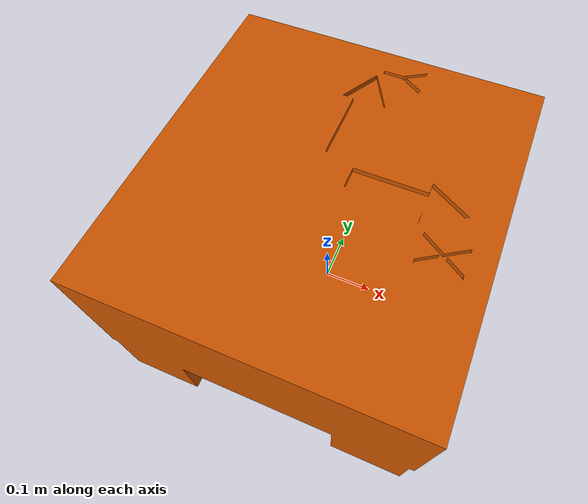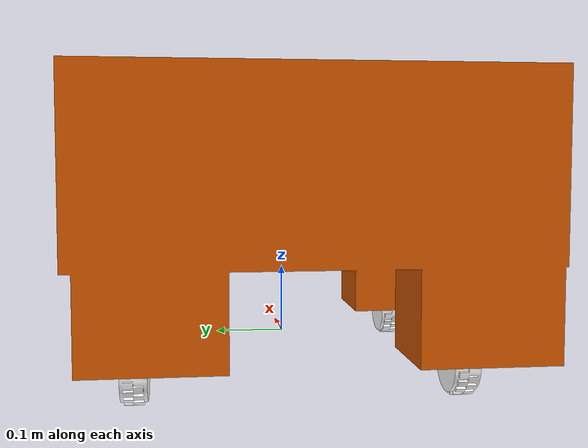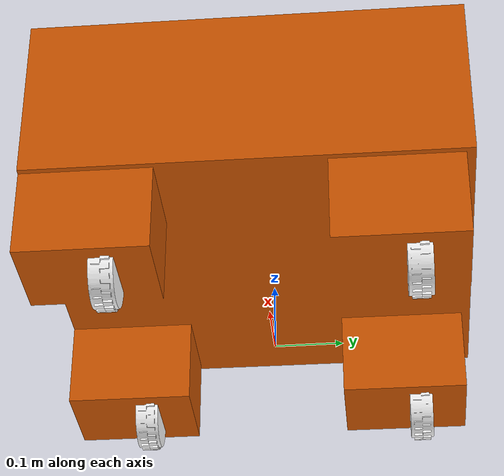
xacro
<?xml version="1.0"?>

<robot xmlns:xacro="http://www.ros.org/wiki/xacro" name="swerve-steer">

  <!-- *************************** XACRO MACROS *************************** -->

  <xacro:include filename="$(find swerve_steer_description)/urdf/common_materials.xacro" />

  <xacro:property name="width" value="0.63500" />
  <xacro:property name="length" value="0.58877" />
  <xacro:property name="square_length" value="0.43180" />

  <xacro:include filename="./module.xacro"/>

  <xacro:property name="body_visual" value="package://swerve_steer_description/meshes/Main_Box_Visual.stl" />
  <xacro:property name="body_collision" value="package://swerve_steer_description/meshes/Main_Box_Collision.stl" />

  <!-- ************************* ROBOT DEFINITION ************************* -->

  <link name="world" />
  <joint name="world_base"  type="floating">
    <origin xyz="0 0 0" rpy="0 0 0" />
    <parent link="world"/>
    <child link="dummy"/>
  </joint>

  <!-- just for visualization: base post -->
  <link name="dummy"/>
  <joint name="dummy_to_base"  type="fixed">
    <origin xyz="0 0 0" rpy="0 0 0" />
    <parent link="dummy"/>
    <child link="base_link"/>
  </joint>

  <link name="map" />
  <joint name="world_map"  type="fixed">
    <origin xyz="0 0 0" rpy="0 0 0" />
    <parent link="world"/>
    <child link="map"/>
  </joint>

  <link name="base_link">
    <visual>
      <origin xyz="0 0 0" rpy="0 0 0" />
      <geometry>
        <mesh filename="${body_visual}"/>
      </geometry>
      <xacro:burnt_orange_material/>
    </visual>
    <collision>
      <origin xyz="0 0 0" rpy="0 0 0" />
      <geometry>
        <mesh filename="${body_collision}"/>
      </geometry>
    </collision>
    <inertial>
      <origin xyz="0 0 0" rpy="0 0 0"/>
      <mass value="50"/>
      <inertia  ixx="0.01" ixy = "0.01" ixz = "0.1" iyy="0.02" iyz = "0.1" izz="0.02"/>
    </inertial>
  </link>

  <xacro:module module_name="module_1" parent_frame="base_link" origin_x="${square_length/2}" origin_y="${square_length/2}"  />

  <xacro:module module_name="module_2" parent_frame="base_link" origin_x="${-1 * square_length/2}" origin_y="${square_length/2}"  />

  <xacro:module module_name="module_3" parent_frame="base_link" origin_x="${-1 * square_length/2}" origin_y="${-1 * square_length/2}"  />

  <xacro:module module_name="module_4" parent_frame="base_link" origin_x="${square_length/2}" origin_y="${-1 * square_length/2}" />

</robot>

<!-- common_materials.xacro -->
<robot xmlns:xacro="http://www.ros.org/wiki/xacro">
  <!-- define macros for colors: -->
  <xacro:macro name="red_material">
    <material name="red">
      <color rgba=".82 0.06 0.06 1"/>
    </material>
  </xacro:macro>
  <xacro:macro name="silver_material">
    <material name="silver">
      <color rgba="0.6 0.6 0.6 1"/>
    </material>
  </xacro:macro>
  <xacro:macro name="black_material">
    <material name="black">
      <color rgba="0 0 0 1"/>
    </material>
  </xacro:macro>
  <xacro:macro name="beige_material">
    <material name="beige">
      <color rgba="0.96 0.945 0.871 1"/>
    </material>
  </xacro:macro>
  <xacro:macro name="burnt_orange_material">
    <material name="burnt_orange">
      <color rgba="0.8 0.33 0.0 1"/>
    </material>
  </xacro:macro>
  <xacro:macro name="white_material">
    <material name="white">
      <color rgba="1 1 1 1"/>
    </material>
  </xacro:macro>
  <xacro:macro name="florida_blue_material">
    <material name="florida_blue">
      <color rgba="0 0.13 0.65 1"/>
    </material>
  </xacro:macro>
</robot>

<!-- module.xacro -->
<robot xmlns:xacro="http://www.ros.org/wiki/xacro">

  <!-- Parent Frame = a frame fixed to the base, centered on the axis of rotation for this flipper's steering DOF -->

  <xacro:property name="wheel_visual" value="package://swerve_steer_description/meshes/Wheel_Visual.stl" />
  <xacro:property name="wheel_collision" value="package://swerve_steer_description/meshes/Wheel_Collision.stl" />
  <xacro:property name="steer" value="package://swerve_steer_description/meshes/Steer.stl" />

  <xacro:macro name="module"
    params="module_name parent_frame origin_x origin_y">

    <!--~~~~~~~~~~~~~~~~~~~ STEERING JOINT ~~~~~~~~~~~~~~~~~~~~~~~~~~~~~~~~~~~~~~~~-->
    <link name="${module_name}/steer">
      <visual>
        <origin xyz="0 0 0" rpy="0 0 0" />
        <geometry>
            <mesh filename="${steer}"/>
        </geometry>
        <xacro:black_material/>
      </visual>

      <collision>
        <origin xyz="0 0 0" rpy="0 0 0" />
        <geometry>
            <mesh filename="${steer}"/>
        </geometry>
      </collision>

      <inertial>
        <origin xyz="0 0 0" rpy="0 0 0" />
        <mass value="3.92"/>
        <inertia  ixx="0.01" ixy = "0.01" ixz = "0.1" iyy="0.02" iyz = "0.1" izz="0.02"/>
      </inertial>
    </link>

    <joint name="${module_name}/steering" type="continuous">
      <parent link="${parent_frame}"/>
      <child link="${module_name}/steer"/>
      <origin xyz="${origin_x} ${origin_y} 0" rpy="0 0 0"/>
      <axis xyz="0 0 1"/>
      <limit effort="104" velocity="0.8"/>
      <joint_properties damping="0.0" friction="0.0"/>
    </joint>

    <!--~~~~~~~~~~~~~~~~~~~~~~ WHEEL JOINT ~~~~~~~~~~~~~~~~~~~~~~~~~~~~~~~~~~~~~~~~-->
    <link name="${module_name}/wheel">
      <visual>
        <origin xyz="0 0 0" rpy="0 0 0" />
        <geometry>
            <mesh filename="${wheel_visual}"/>
        </geometry>
        <xacro:white_material/>
      </visual>

      <collision>
        <origin xyz="0 0 0" rpy="0 0 0" />
        <geometry>
            <mesh filename="${wheel_collision}"/>
        </geometry>
      </collision>

      <inertial>
        <origin xyz="0 0 0" rpy="0 0 0" />
        <mass value="1.6"/>
        <inertia  ixx="0.01" ixy = "0.01" ixz = "0.1" iyy="0.02" iyz = "0.1" izz="0.02"/>
      </inertial>
    </link>

    <joint name="${module_name}/drive" type="continuous">
      <parent link="${module_name}/steer"/>
      <child link="${module_name}/wheel"/>
      <origin xyz="0 0 0" rpy="0 0 0"/>
      <axis xyz="0 1 0"/>
      <limit effort="19" velocity="3.14"/>
      <joint_properties damping="0.0" friction="0.5"/>
    </joint>

  </xacro:macro>
</robot>
